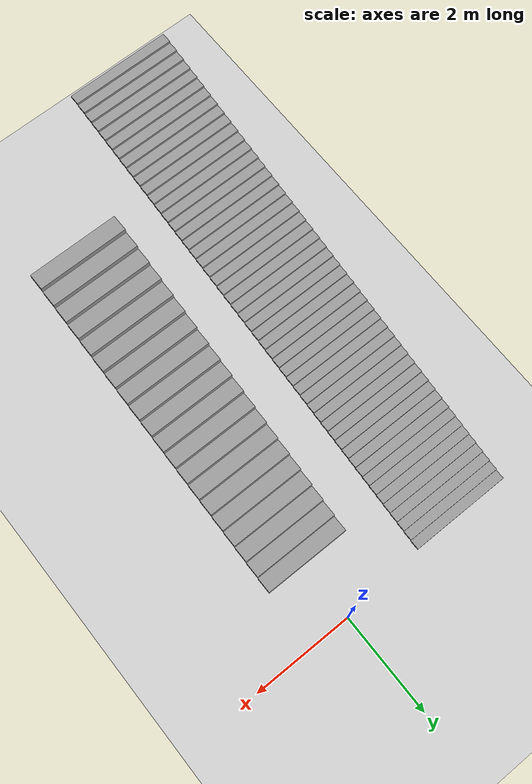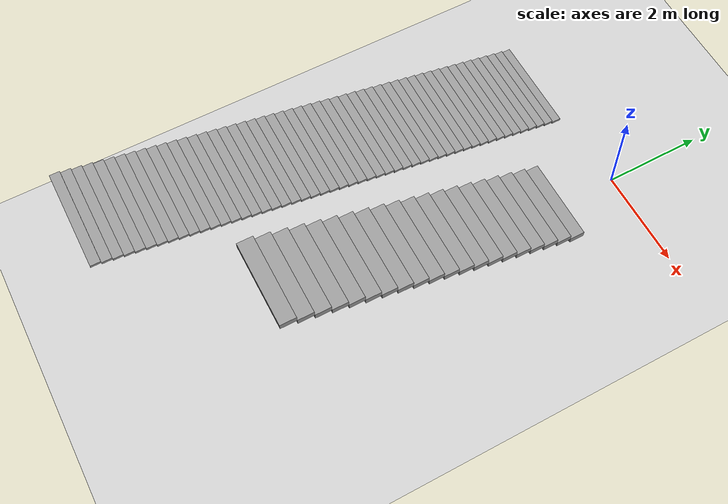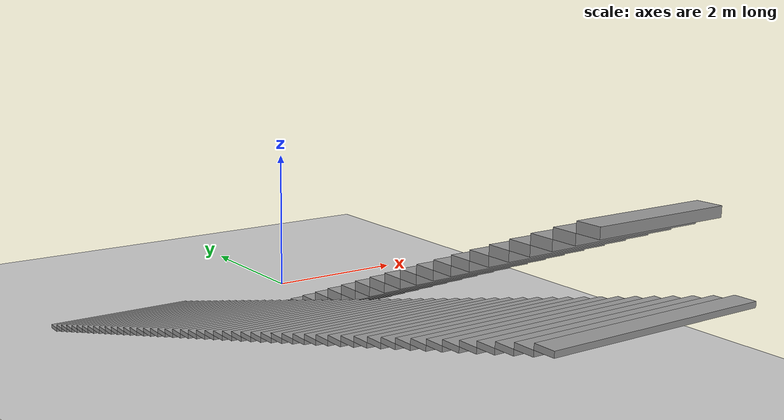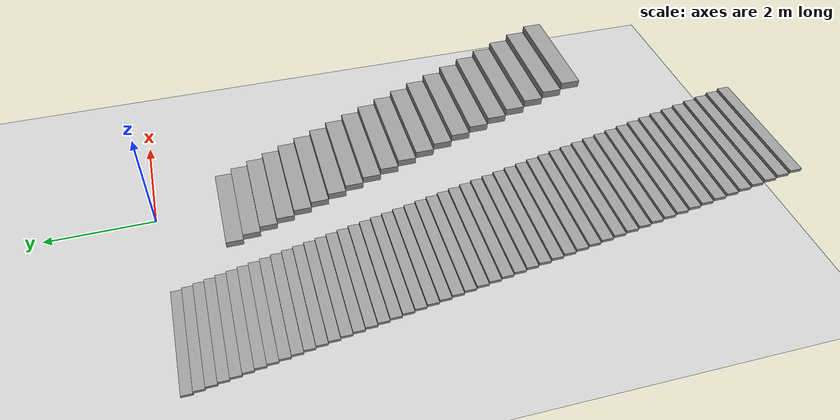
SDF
<sdf version="1.6">
 <world name="default">
  <light name="sun" type="directional">
   <pose>0 0 10 0 -0 0</pose>
   <diffuse>0.8 0.8 0.8 1</diffuse>
   <specular>0.2 0.2 0.2 1</specular>
   <attenuation>
    <range>1000</range>
    <constant>0.9</constant>
    <linear>0.01</linear>
    <quadratic>0.001</quadratic>
   </attenuation>
   <direction>-0.5 0.1 -0.9</direction>
  </light>
  <model name="ground_plane">
   <static>1</static>
   <link name="link">
    <collision name="collision">
     <geometry><plane><normal>0 0 1</normal><size>100 100</size></plane></geometry>
     <surface><friction><ode><mu>100</mu><mu2>50</mu2></ode></friction></surface>
    </collision>
    <visual name="visual">
     <cast_shadows>0</cast_shadows>
     <geometry><plane><normal>0 0 1</normal><size>100 100</size></plane></geometry>
     <material>
      <script><uri>file://media/materials/scripts/gazebo.material</uri><name>Gazebo/Grey</name></script>
     </material>
    </visual>
   </link>
  </model>
  <gravity>0 0 -9.8</gravity>
  <magnetic_field>6e-06 2.3e-05 -4.2e-05</magnetic_field>
  <atmosphere type="adiabatic"/>
  <physics name="default_physics" default="0" type="ode">
   <max_step_size>0.001</max_step_size>
   <real_time_factor>1</real_time_factor>
   <real_time_update_rate>1000</real_time_update_rate>
  </physics>
  <scene><ambient>0.4 0.4 0.4 1</ambient><background>0.7 0.7 0.7 1</background><shadows>1</shadows></scene>
  <audio><device>default</device></audio>
  <spherical_coordinates>
   <surface_model>EARTH_WGS84</surface_model>
   <latitude_deg>0</latitude_deg>
   <longitude_deg>0</longitude_deg>
   <elevation>0</elevation>
   <heading_deg>0</heading_deg>
  </spherical_coordinates>
  <model name="stair_short">
   <pose>-2.72 -4.97 0 0 -0 0</pose>
   <link name="Stairs_1">
    <visual name="Stairs_1_Visual_0">
     <pose>0 4.7383 0.025 0 -0 0</pose>
     <geometry><box><size>2.02 0.1934 0.05</size></box></geometry>
     <material>
      <script><uri>file://media/materials/scripts/gazebo.material</uri><name>Gazebo/Grey</name></script>
      <ambient>1 1 1 1</ambient>
     </material>
     <meta><layer>0</layer></meta>
    </visual>
    <collision name="Stairs_1_Collision_0">
     <geometry><box><size>2.02 0.1934 0.05</size></box></geometry>
     <pose>0 4.7383 0.025 0 -0 0</pose>
    </collision>
    <visual name="Stairs_1_Visual_1">
     <pose>0 4.5449 0.075 0 -0 0</pose>
     <geometry><box><size>2.02 0.1934 0.05</size></box></geometry>
     <material>
      <script><uri>file://media/materials/scripts/gazebo.material</uri><name>Gazebo/Grey</name></script>
      <ambient>1 1 1 1</ambient>
     </material>
     <meta><layer>0</layer></meta>
    </visual>
    <collision name="Stairs_1_Collision_1">
     <geometry><box><size>2.02 0.1934 0.05</size></box></geometry>
     <pose>0 4.5449 0.075 0 -0 0</pose>
    </collision>
    <visual name="Stairs_1_Visual_2">
     <pose>0 4.3515 0.125 0 -0 0</pose>
     <geometry><box><size>2.02 0.1934 0.05</size></box></geometry>
     <material>
      <script><uri>file://media/materials/scripts/gazebo.material</uri><name>Gazebo/Grey</name></script>
      <ambient>1 1 1 1</ambient>
     </material>
     <meta><layer>0</layer></meta>
    </visual>
    <collision name="Stairs_1_Collision_2">
     <geometry><box><size>2.02 0.1934 0.05</size></box></geometry>
     <pose>0 4.3515 0.125 0 -0 0</pose>
    </collision>
    <visual name="Stairs_1_Visual_3">
     <pose>0 4.1581 0.175 0 -0 0</pose>
     <geometry><box><size>2.02 0.1934 0.05</size></box></geometry>
     <material>
      <script><uri>file://media/materials/scripts/gazebo.material</uri><name>Gazebo/Grey</name></script>
      <ambient>1 1 1 1</ambient>
     </material>
     <meta><layer>0</layer></meta>
    </visual>
    <collision name="Stairs_1_Collision_3">
     <geometry><box><size>2.02 0.1934 0.05</size></box></geometry>
     <pose>0 4.1581 0.175 0 -0 0</pose>
    </collision>
    <visual name="Stairs_1_Visual_4">
     <pose>0 3.9647 0.225 0 -0 0</pose>
     <geometry><box><size>2.02 0.1934 0.05</size></box></geometry>
     <material>
      <script><uri>file://media/materials/scripts/gazebo.material</uri><name>Gazebo/Grey</name></script>
      <ambient>1 1 1 1</ambient>
     </material>
     <meta><layer>0</layer></meta>
    </visual>
    <collision name="Stairs_1_Collision_4">
     <geometry><box><size>2.02 0.1934 0.05</size></box></geometry>
     <pose>0 3.9647 0.225 0 -0 0</pose>
    </collision>
    <visual name="Stairs_1_Visual_5">
     <pose>0 3.7713 0.275 0 -0 0</pose>
     <geometry><box><size>2.02 0.1934 0.05</size></box></geometry>
     <material>
      <script><uri>file://media/materials/scripts/gazebo.material</uri><name>Gazebo/Grey</name></script>
      <ambient>1 1 1 1</ambient>
     </material>
     <meta><layer>0</layer></meta>
    </visual>
    <collision name="Stairs_1_Collision_5">
     <geometry><box><size>2.02 0.1934 0.05</size></box></geometry>
     <pose>0 3.7713 0.275 0 -0 0</pose>
    </collision>
    <visual name="Stairs_1_Visual_6">
     <pose>0 3.5779 0.325 0 -0 0</pose>
     <geometry><box><size>2.02 0.1934 0.05</size></box></geometry>
     <material>
      <script><uri>file://media/materials/scripts/gazebo.material</uri><name>Gazebo/Grey</name></script>
      <ambient>1 1 1 1</ambient>
     </material>
     <meta><layer>0</layer></meta>
    </visual>
    <collision name="Stairs_1_Collision_6">
     <geometry><box><size>2.02 0.1934 0.05</size></box></geometry>
     <pose>0 3.5779 0.325 0 -0 0</pose>
    </collision>
    <visual name="Stairs_1_Visual_7">
     <pose>0 3.3845 0.375 0 -0 0</pose>
     <geometry><box><size>2.02 0.1934 0.05</size></box></geometry>
     <material>
      <script><uri>file://media/materials/scripts/gazebo.material</uri><name>Gazebo/Grey</name></script>
      <ambient>1 1 1 1</ambient>
     </material>
     <meta><layer>0</layer></meta>
    </visual>
    <collision name="Stairs_1_Collision_7">
     <geometry><box><size>2.02 0.1934 0.05</size></box></geometry>
     <pose>0 3.3845 0.375 0 -0 0</pose>
    </collision>
    <visual name="Stairs_1_Visual_8">
     <pose>0 3.1911 0.425 0 -0 0</pose>
     <geometry><box><size>2.02 0.1934 0.05</size></box></geometry>
     <material>
      <script><uri>file://media/materials/scripts/gazebo.material</uri><name>Gazebo/Grey</name></script>
      <ambient>1 1 1 1</ambient>
     </material>
     <meta><layer>0</layer></meta>
    </visual>
    <collision name="Stairs_1_Collision_8">
     <geometry><box><size>2.02 0.1934 0.05</size></box></geometry>
     <pose>0 3.1911 0.425 0 -0 0</pose>
    </collision>
    <visual name="Stairs_1_Visual_9">
     <pose>0 2.9977 0.475 0 -0 0</pose>
     <geometry><box><size>2.02 0.1934 0.05</size></box></geometry>
     <material>
      <script><uri>file://media/materials/scripts/gazebo.material</uri><name>Gazebo/Grey</name></script>
      <ambient>1 1 1 1</ambient>
     </material>
     <meta><layer>0</layer></meta>
    </visual>
    <collision name="Stairs_1_Collision_9">
     <geometry><box><size>2.02 0.1934 0.05</size></box></geometry>
     <pose>0 2.9977 0.475 0 -0 0</pose>
    </collision>
    <visual name="Stairs_1_Visual_10">
     <pose>0 2.8043 0.525 0 -0 0</pose>
     <geometry><box><size>2.02 0.1934 0.05</size></box></geometry>
     <material>
      <script><uri>file://media/materials/scripts/gazebo.material</uri><name>Gazebo/Grey</name></script>
      <ambient>1 1 1 1</ambient>
     </material>
     <meta><layer>0</layer></meta>
    </visual>
    <collision name="Stairs_1_Collision_10">
     <geometry><box><size>2.02 0.1934 0.05</size></box></geometry>
     <pose>0 2.8043 0.525 0 -0 0</pose>
    </collision>
    <visual name="Stairs_1_Visual_11">
     <pose>0 2.6109 0.575 0 -0 0</pose>
     <geometry><box><size>2.02 0.1934 0.05</size></box></geometry>
     <material>
      <script><uri>file://media/materials/scripts/gazebo.material</uri><name>Gazebo/Grey</name></script>
      <ambient>1 1 1 1</ambient>
     </material>
     <meta><layer>0</layer></meta>
    </visual>
    <collision name="Stairs_1_Collision_11">
     <geometry><box><size>2.02 0.1934 0.05</size></box></geometry>
     <pose>0 2.6109 0.575 0 -0 0</pose>
    </collision>
    <visual name="Stairs_1_Visual_12">
     <pose>0 2.4175 0.625 0 -0 0</pose>
     <geometry><box><size>2.02 0.1934 0.05</size></box></geometry>
     <material>
      <script><uri>file://media/materials/scripts/gazebo.material</uri><name>Gazebo/Grey</name></script>
      <ambient>1 1 1 1</ambient>
     </material>
     <meta><layer>0</layer></meta>
    </visual>
    <collision name="Stairs_1_Collision_12">
     <geometry><box><size>2.02 0.1934 0.05</size></box></geometry>
     <pose>0 2.4175 0.625 0 -0 0</pose>
    </collision>
    <visual name="Stairs_1_Visual_13">
     <pose>0 2.2241 0.675 0 -0 0</pose>
     <geometry><box><size>2.02 0.1934 0.05</size></box></geometry>
     <material>
      <script><uri>file://media/materials/scripts/gazebo.material</uri><name>Gazebo/Grey</name></script>
      <ambient>1 1 1 1</ambient>
     </material>
     <meta><layer>0</layer></meta>
    </visual>
    <collision name="Stairs_1_Collision_13">
     <geometry><box><size>2.02 0.1934 0.05</size></box></geometry>
     <pose>0 2.2241 0.675 0 -0 0</pose>
    </collision>
    <visual name="Stairs_1_Visual_14">
     <pose>0 2.0307 0.725 0 -0 0</pose>
     <geometry><box><size>2.02 0.1934 0.05</size></box></geometry>
     <material>
      <script><uri>file://media/materials/scripts/gazebo.material</uri><name>Gazebo/Grey</name></script>
      <ambient>1 1 1 1</ambient>
     </material>
     <meta><layer>0</layer></meta>
    </visual>
    <collision name="Stairs_1_Collision_14">
     <geometry><box><size>2.02 0.1934 0.05</size></box></geometry>
     <pose>0 2.0307 0.725 0 -0 0</pose>
    </collision>
    <visual name="Stairs_1_Visual_15">
     <pose>0 1.8373 0.775 0 -0 0</pose>
     <geometry><box><size>2.02 0.1934 0.05</size></box></geometry>
     <material>
      <script><uri>file://media/materials/scripts/gazebo.material</uri><name>Gazebo/Grey</name></script>
      <ambient>1 1 1 1</ambient>
     </material>
     <meta><layer>0</layer></meta>
    </visual>
    <collision name="Stairs_1_Collision_15">
     <geometry><box><size>2.02 0.1934 0.05</size></box></geometry>
     <pose>0 1.8373 0.775 0 -0 0</pose>
    </collision>
    <visual name="Stairs_1_Visual_16">
     <pose>0 1.6439 0.825 0 -0 0</pose>
     <geometry><box><size>2.02 0.1934 0.05</size></box></geometry>
     <material>
      <script><uri>file://media/materials/scripts/gazebo.material</uri><name>Gazebo/Grey</name></script>
      <ambient>1 1 1 1</ambient>
     </material>
     <meta><layer>0</layer></meta>
    </visual>
    <collision name="Stairs_1_Collision_16">
     <geometry><box><size>2.02 0.1934 0.05</size></box></geometry>
     <pose>0 1.6439 0.825 0 -0 0</pose>
    </collision>
    <visual name="Stairs_1_Visual_17">
     <pose>0 1.4505 0.875 0 -0 0</pose>
     <geometry><box><size>2.02 0.1934 0.05</size></box></geometry>
     <material>
      <script><uri>file://media/materials/scripts/gazebo.material</uri><name>Gazebo/Grey</name></script>
      <ambient>1 1 1 1</ambient>
     </material>
     <meta><layer>0</layer></meta>
    </visual>
    <collision name="Stairs_1_Collision_17">
     <geometry><box><size>2.02 0.1934 0.05</size></box></geometry>
     <pose>0 1.4505 0.875 0 -0 0</pose>
    </collision>
    <visual name="Stairs_1_Visual_18">
     <pose>0 1.2571 0.925 0 -0 0</pose>
     <geometry><box><size>2.02 0.1934 0.05</size></box></geometry>
     <material>
      <script><uri>file://media/materials/scripts/gazebo.material</uri><name>Gazebo/Grey</name></script>
      <ambient>1 1 1 1</ambient>
     </material>
     <meta><layer>0</layer></meta>
    </visual>
    <collision name="Stairs_1_Collision_18">
     <geometry><box><size>2.02 0.1934 0.05</size></box></geometry>
     <pose>0 1.2571 0.925 0 -0 0</pose>
    </collision>
    <visual name="Stairs_1_Visual_19">
     <pose>0 1.0637 0.975 0 -0 0</pose>
     <geometry><box><size>2.02 0.1934 0.05</size></box></geometry>
     <material>
      <script><uri>file://media/materials/scripts/gazebo.material</uri><name>Gazebo/Grey</name></script>
      <ambient>1 1 1 1</ambient>
     </material>
     <meta><layer>0</layer></meta>
    </visual>
    <collision name="Stairs_1_Collision_19">
     <geometry><box><size>2.02 0.1934 0.05</size></box></geometry>
     <pose>0 1.0637 0.975 0 -0 0</pose>
    </collision>
    <visual name="Stairs_1_Visual_20">
     <pose>0 0.870299 1.025 0 -0 0</pose>
     <geometry><box><size>2.02 0.1934 0.05</size></box></geometry>
     <material>
      <script><uri>file://media/materials/scripts/gazebo.material</uri><name>Gazebo/Grey</name></script>
      <ambient>1 1 1 1</ambient>
     </material>
     <meta><layer>0</layer></meta>
    </visual>
    <collision name="Stairs_1_Collision_20">
     <geometry><box><size>2.02 0.1934 0.05</size></box></geometry>
     <pose>0 0.870299 1.025 0 -0 0</pose>
    </collision>
    <visual name="Stairs_1_Visual_21">
     <pose>0 0.6769 1.075 0 -0 0</pose>
     <geometry><box><size>2.02 0.1934 0.05</size></box></geometry>
     <material>
      <script><uri>file://media/materials/scripts/gazebo.material</uri><name>Gazebo/Grey</name></script>
      <ambient>1 1 1 1</ambient>
     </material>
     <meta><layer>0</layer></meta>
    </visual>
    <collision name="Stairs_1_Collision_21">
     <geometry><box><size>2.02 0.1934 0.05</size></box></geometry>
     <pose>0 0.6769 1.075 0 -0 0</pose>
    </collision>
    <visual name="Stairs_1_Visual_22">
     <pose>0 0.4835 1.125 0 -0 0</pose>
     <geometry><box><size>2.02 0.1934 0.05</size></box></geometry>
     <material>
      <script><uri>file://media/materials/scripts/gazebo.material</uri><name>Gazebo/Grey</name></script>
      <ambient>1 1 1 1</ambient>
     </material>
     <meta><layer>0</layer></meta>
    </visual>
    <collision name="Stairs_1_Collision_22">
     <geometry><box><size>2.02 0.1934 0.05</size></box></geometry>
     <pose>0 0.4835 1.125 0 -0 0</pose>
    </collision>
    <visual name="Stairs_1_Visual_23">
     <pose>0 0.2901 1.175 0 -0 0</pose>
     <geometry><box><size>2.02 0.1934 0.05</size></box></geometry>
     <material>
      <script><uri>file://media/materials/scripts/gazebo.material</uri><name>Gazebo/Grey</name></script>
      <ambient>1 1 1 1</ambient>
     </material>
     <meta><layer>0</layer></meta>
    </visual>
    <collision name="Stairs_1_Collision_23">
     <geometry><box><size>2.02 0.1934 0.05</size></box></geometry>
     <pose>0 0.2901 1.175 0 -0 0</pose>
    </collision>
    <visual name="Stairs_1_Visual_24">
     <pose>0 0.0967 1.225 0 -0 0</pose>
     <geometry><box><size>2.02 0.1934 0.05</size></box></geometry>
     <material>
      <script><uri>file://media/materials/scripts/gazebo.material</uri><name>Gazebo/Grey</name></script>
      <ambient>1 1 1 1</ambient>
     </material>
     <meta><layer>0</layer></meta>
    </visual>
    <collision name="Stairs_1_Collision_24">
     <geometry><box><size>2.02 0.1934 0.05</size></box></geometry>
     <pose>0 0.0967 1.225 0 -0 0</pose>
    </collision>
    <visual name="Stairs_1_Visual_25">
     <pose>0 -0.096701 1.275 0 -0 0</pose>
     <geometry><box><size>2.02 0.1934 0.05</size></box></geometry>
     <material>
      <script><uri>file://media/materials/scripts/gazebo.material</uri><name>Gazebo/Grey</name></script>
      <ambient>1 1 1 1</ambient>
     </material>
     <meta><layer>0</layer></meta>
    </visual>
    <collision name="Stairs_1_Collision_25">
     <geometry><box><size>2.02 0.1934 0.05</size></box></geometry>
     <pose>0 -0.096701 1.275 0 -0 0</pose>
    </collision>
    <visual name="Stairs_1_Visual_26">
     <pose>0 -0.2901 1.325 0 -0 0</pose>
     <geometry><box><size>2.02 0.1934 0.05</size></box></geometry>
     <material>
      <script><uri>file://media/materials/scripts/gazebo.material</uri><name>Gazebo/Grey</name></script>
      <ambient>1 1 1 1</ambient>
     </material>
     <meta><layer>0</layer></meta>
    </visual>
    <collision name="Stairs_1_Collision_26">
     <geometry><box><size>2.02 0.1934 0.05</size></box></geometry>
     <pose>0 -0.2901 1.325 0 -0 0</pose>
    </collision>
    <visual name="Stairs_1_Visual_27">
     <pose>0 -0.4835 1.375 0 -0 0</pose>
     <geometry><box><size>2.02 0.1934 0.05</size></box></geometry>
     <material>
      <script><uri>file://media/materials/scripts/gazebo.material</uri><name>Gazebo/Grey</name></script>
      <ambient>1 1 1 1</ambient>
     </material>
     <meta><layer>0</layer></meta>
    </visual>
    <collision name="Stairs_1_Collision_27">
     <geometry><box><size>2.02 0.1934 0.05</size></box></geometry>
     <pose>0 -0.4835 1.375 0 -0 0</pose>
    </collision>
    <visual name="Stairs_1_Visual_28">
     <pose>0 -0.6769 1.425 0 -0 0</pose>
     <geometry><box><size>2.02 0.1934 0.05</size></box></geometry>
     <material>
      <script><uri>file://media/materials/scripts/gazebo.material</uri><name>Gazebo/Grey</name></script>
      <ambient>1 1 1 1</ambient>
     </material>
     <meta><layer>0</layer></meta>
    </visual>
    <collision name="Stairs_1_Collision_28">
     <geometry><box><size>2.02 0.1934 0.05</size></box></geometry>
     <pose>0 -0.6769 1.425 0 -0 0</pose>
    </collision>
    <visual name="Stairs_1_Visual_29">
     <pose>0 -0.8703 1.475 0 -0 0</pose>
     <geometry><box><size>2.02 0.1934 0.05</size></box></geometry>
     <material>
      <script><uri>file://media/materials/scripts/gazebo.material</uri><name>Gazebo/Grey</name></script>
      <ambient>1 1 1 1</ambient>
     </material>
     <meta><layer>0</layer></meta>
    </visual>
    <collision name="Stairs_1_Collision_29">
     <geometry><box><size>2.02 0.1934 0.05</size></box></geometry>
     <pose>0 -0.8703 1.475 0 -0 0</pose>
    </collision>
    <visual name="Stairs_1_Visual_30">
     <pose>0 -1.0637 1.525 0 -0 0</pose>
     <geometry><box><size>2.02 0.1934 0.05</size></box></geometry>
     <material>
      <script><uri>file://media/materials/scripts/gazebo.material</uri><name>Gazebo/Grey</name></script>
      <ambient>1 1 1 1</ambient>
     </material>
     <meta><layer>0</layer></meta>
    </visual>
    <collision name="Stairs_1_Collision_30">
     <geometry><box><size>2.02 0.1934 0.05</size></box></geometry>
     <pose>0 -1.0637 1.525 0 -0 0</pose>
    </collision>
    <visual name="Stairs_1_Visual_31">
     <pose>0 -1.2571 1.575 0 -0 0</pose>
     <geometry><box><size>2.02 0.1934 0.05</size></box></geometry>
     <material>
      <script><uri>file://media/materials/scripts/gazebo.material</uri><name>Gazebo/Grey</name></script>
      <ambient>1 1 1 1</ambient>
     </material>
     <meta><layer>0</layer></meta>
    </visual>
    <collision name="Stairs_1_Collision_31">
     <geometry><box><size>2.02 0.1934 0.05</size></box></geometry>
     <pose>0 -1.2571 1.575 0 -0 0</pose>
    </collision>
    <visual name="Stairs_1_Visual_32">
     <pose>0 -1.4505 1.625 0 -0 0</pose>
     <geometry><box><size>2.02 0.1934 0.05</size></box></geometry>
     <material>
      <script><uri>file://media/materials/scripts/gazebo.material</uri><name>Gazebo/Grey</name></script>
      <ambient>1 1 1 1</ambient>
     </material>
     <meta><layer>0</layer></meta>
    </visual>
    <collision name="Stairs_1_Collision_32">
     <geometry><box><size>2.02 0.1934 0.05</size></box></geometry>
     <pose>0 -1.4505 1.625 0 -0 0</pose>
    </collision>
    <visual name="Stairs_1_Visual_33">
     <pose>0 -1.6439 1.675 0 -0 0</pose>
     <geometry><box><size>2.02 0.1934 0.05</size></box></geometry>
     <material>
      <script><uri>file://media/materials/scripts/gazebo.material</uri><name>Gazebo/Grey</name></script>
      <ambient>1 1 1 1</ambient>
     </material>
     <meta><layer>0</layer></meta>
    </visual>
    <collision name="Stairs_1_Collision_33">
     <geometry><box><size>2.02 0.1934 0.05</size></box></geometry>
     <pose>0 -1.6439 1.675 0 -0 0</pose>
    </collision>
    <visual name="Stairs_1_Visual_34">
     <pose>0 -1.8373 1.725 0 -0 0</pose>
     <geometry><box><size>2.02 0.1934 0.05</size></box></geometry>
     <material>
      <script><uri>file://media/materials/scripts/gazebo.material</uri><name>Gazebo/Grey</name></script>
      <ambient>1 1 1 1</ambient>
     </material>
     <meta><layer>0</layer></meta>
    </visual>
    <collision name="Stairs_1_Collision_34">
     <geometry><box><size>2.02 0.1934 0.05</size></box></geometry>
     <pose>0 -1.8373 1.725 0 -0 0</pose>
    </collision>
    <visual name="Stairs_1_Visual_35">
     <pose>0 -2.0307 1.775 0 -0 0</pose>
     <geometry><box><size>2.02 0.1934 0.05</size></box></geometry>
     <material>
      <script><uri>file://media/materials/scripts/gazebo.material</uri><name>Gazebo/Grey</name></script>
      <ambient>1 1 1 1</ambient>
     </material>
     <meta><layer>0</layer></meta>
    </visual>
    <collision name="Stairs_1_Collision_35">
     <geometry><box><size>2.02 0.1934 0.05</size></box></geometry>
     <pose>0 -2.0307 1.775 0 -0 0</pose>
    </collision>
    <visual name="Stairs_1_Visual_36">
     <pose>0 -2.2241 1.825 0 -0 0</pose>
     <geometry><box><size>2.02 0.1934 0.05</size></box></geometry>
     <material>
      <script><uri>file://media/materials/scripts/gazebo.material</uri><name>Gazebo/Grey</name></script>
      <ambient>1 1 1 1</ambient>
     </material>
     <meta><layer>0</layer></meta>
    </visual>
    <collision name="Stairs_1_Collision_36">
     <geometry><box><size>2.02 0.1934 0.05</size></box></geometry>
     <pose>0 -2.2241 1.825 0 -0 0</pose>
    </collision>
    <visual name="Stairs_1_Visual_37">
     <pose>0 -2.4175 1.875 0 -0 0</pose>
     <geometry><box><size>2.02 0.1934 0.05</size></box></geometry>
     <material>
      <script><uri>file://media/materials/scripts/gazebo.material</uri><name>Gazebo/Grey</name></script>
      <ambient>1 1 1 1</ambient>
     </material>
     <meta><layer>0</layer></meta>
    </visual>
    <collision name="Stairs_1_Collision_37">
     <geometry><box><size>2.02 0.1934 0.05</size></box></geometry>
     <pose>0 -2.4175 1.875 0 -0 0</pose>
    </collision>
    <visual name="Stairs_1_Visual_38">
     <pose>0 -2.6109 1.925 0 -0 0</pose>
     <geometry><box><size>2.02 0.1934 0.05</size></box></geometry>
     <material>
      <script><uri>file://media/materials/scripts/gazebo.material</uri><name>Gazebo/Grey</name></script>
      <ambient>1 1 1 1</ambient>
     </material>
     <meta><layer>0</layer></meta>
    </visual>
    <collision name="Stairs_1_Collision_38">
     <geometry><box><size>2.02 0.1934 0.05</size></box></geometry>
     <pose>0 -2.6109 1.925 0 -0 0</pose>
    </collision>
    <visual name="Stairs_1_Visual_39">
     <pose>0 -2.8043 1.975 0 -0 0</pose>
     <geometry><box><size>2.02 0.1934 0.05</size></box></geometry>
     <material>
      <script><uri>file://media/materials/scripts/gazebo.material</uri><name>Gazebo/Grey</name></script>
      <ambient>1 1 1 1</ambient>
     </material>
     <meta><layer>0</layer></meta>
    </visual>
    <collision name="Stairs_1_Collision_39">
     <geometry><box><size>2.02 0.1934 0.05</size></box></geometry>
     <pose>0 -2.8043 1.975 0 -0 0</pose>
    </collision>
    <visual name="Stairs_1_Visual_40">
     <pose>0 -2.9977 2.025 0 -0 0</pose>
     <geometry><box><size>2.02 0.1934 0.05</size></box></geometry>
     <material>
      <script><uri>file://media/materials/scripts/gazebo.material</uri><name>Gazebo/Grey</name></script>
      <ambient>1 1 1 1</ambient>
     </material>
     <meta><layer>0</layer></meta>
    </visual>
    <collision name="Stairs_1_Collision_40">
     <geometry><box><size>2.02 0.1934 0.05</size></box></geometry>
     <pose>0 -2.9977 2.025 0 -0 0</pose>
    </collision>
    <visual name="Stairs_1_Visual_41">
     <pose>0 -3.1911 2.075 0 -0 0</pose>
     <geometry><box><size>2.02 0.1934 0.05</size></box></geometry>
     <material>
      <script><uri>file://media/materials/scripts/gazebo.material</uri><name>Gazebo/Grey</name></script>
      <ambient>1 1 1 1</ambient>
     </material>
     <meta><layer>0</layer></meta>
    </visual>
    <collision name="Stairs_1_Collision_41">
     <geometry><box><size>2.02 0.1934 0.05</size></box></geometry>
     <pose>0 -3.1911 2.075 0 -0 0</pose>
    </collision>
    <visual name="Stairs_1_Visual_42">
     <pose>0 -3.3845 2.125 0 -0 0</pose>
     <geometry><box><size>2.02 0.1934 0.05</size></box></geometry>
     <material>
      <script><uri>file://media/materials/scripts/gazebo.material</uri><name>Gazebo/Grey</name></script>
      <ambient>1 1 1 1</ambient>
     </material>
     <meta><layer>0</layer></meta>
    </visual>
    <collision name="Stairs_1_Collision_42">
     <geometry><box><size>2.02 0.1934 0.05</size></box></geometry>
     <pose>0 -3.3845 2.125 0 -0 0</pose>
    </collision>
    <visual name="Stairs_1_Visual_43">
     <pose>0 -3.5779 2.175 0 -0 0</pose>
     <geometry><box><size>2.02 0.1934 0.05</size></box></geometry>
     <material>
      <script><uri>file://media/materials/scripts/gazebo.material</uri><name>Gazebo/Grey</name></script>
      <ambient>1 1 1 1</ambient>
     </material>
     <meta><layer>0</layer></meta>
    </visual>
    <collision name="Stairs_1_Collision_43">
     <geometry><box><size>2.02 0.1934 0.05</size></box></geometry>
     <pose>0 -3.5779 2.175 0 -0 0</pose>
    </collision>
    <visual name="Stairs_1_Visual_44">
     <pose>0 -3.7713 2.225 0 -0 0</pose>
     <geometry><box><size>2.02 0.1934 0.05</size></box></geometry>
     <material>
      <script><uri>file://media/materials/scripts/gazebo.material</uri><name>Gazebo/Grey</name></script>
      <ambient>1 1 1 1</ambient>
     </material>
     <meta><layer>0</layer></meta>
    </visual>
    <collision name="Stairs_1_Collision_44">
     <geometry><box><size>2.02 0.1934 0.05</size></box></geometry>
     <pose>0 -3.7713 2.225 0 -0 0</pose>
    </collision>
    <visual name="Stairs_1_Visual_45">
     <pose>0 -3.9647 2.275 0 -0 0</pose>
     <geometry><box><size>2.02 0.1934 0.05</size></box></geometry>
     <material>
      <script><uri>file://media/materials/scripts/gazebo.material</uri><name>Gazebo/Grey</name></script>
      <ambient>1 1 1 1</ambient>
     </material>
     <meta><layer>0</layer></meta>
    </visual>
    <collision name="Stairs_1_Collision_45">
     <geometry><box><size>2.02 0.1934 0.05</size></box></geometry>
     <pose>0 -3.9647 2.275 0 -0 0</pose>
    </collision>
    <visual name="Stairs_1_Visual_46">
     <pose>0 -4.1581 2.325 0 -0 0</pose>
     <geometry><box><size>2.02 0.1934 0.05</size></box></geometry>
     <material>
      <script><uri>file://media/materials/scripts/gazebo.material</uri><name>Gazebo/Grey</name></script>
      <ambient>1 1 1 1</ambient>
     </material>
     <meta><layer>0</layer></meta>
    </visual>
    <collision name="Stairs_1_Collision_46">
     <geometry><box><size>2.02 0.1934 0.05</size></box></geometry>
     <pose>0 -4.1581 2.325 0 -0 0</pose>
    </collision>
    <visual name="Stairs_1_Visual_47">
     <pose>0 -4.3515 2.375 0 -0 0</pose>
     <geometry><box><size>2.02 0.1934 0.05</size></box></geometry>
     <material>
      <script><uri>file://media/materials/scripts/gazebo.material</uri><name>Gazebo/Grey</name></script>
      <ambient>1 1 1 1</ambient>
     </material>
     <meta><layer>0</layer></meta>
    </visual>
    <collision name="Stairs_1_Collision_47">
     <geometry><box><size>2.02 0.1934 0.05</size></box></geometry>
     <pose>0 -4.3515 2.375 0 -0 0</pose>
    </collision>
    <visual name="Stairs_1_Visual_48">
     <pose>0 -4.5449 2.425 0 -0 0</pose>
     <geometry><box><size>2.02 0.1934 0.05</size></box></geometry>
     <material>
      <script><uri>file://media/materials/scripts/gazebo.material</uri><name>Gazebo/Grey</name></script>
      <ambient>1 1 1 1</ambient>
     </material>
     <meta><layer>0</layer></meta>
    </visual>
    <collision name="Stairs_1_Collision_48">
     <geometry><box><size>2.02 0.1934 0.05</size></box></geometry>
     <pose>0 -4.5449 2.425 0 -0 0</pose>
    </collision>
    <visual name="Stairs_1_Visual_49">
     <pose>0 -4.7383 2.475 0 -0 0</pose>
     <geometry><box><size>2.02 0.1934 0.05</size></box></geometry>
     <material>
      <script><uri>file://media/materials/scripts/gazebo.material</uri><name>Gazebo/Grey</name></script>
      <ambient>1 1 1 1</ambient>
     </material>
     <meta><layer>0</layer></meta>
    </visual>
    <collision name="Stairs_1_Collision_49">
     <geometry><box><size>2.02 0.1934 0.05</size></box></geometry>
     <pose>0 -4.7383 2.475 0 -0 0</pose>
    </collision>
   </link>
   <static>1</static>
  </model>
  <model name="stair2">
   <pose>-0.07 -4.32 0 0 -0 0</pose>
   <link name="Stairs_1">
    <visual name="Stairs_1_Visual_0">
     <pose>-0 2.98775 0.0625 0 -0 0</pose>
     <geometry><box><size>1.72 0.3145 0.125</size></box></geometry>
     <material>
      <script><uri>file://media/materials/scripts/gazebo.material</uri><name>Gazebo/Grey</name></script>
      <ambient>1 1 1 1</ambient>
     </material>
     <meta><layer>0</layer></meta>
    </visual>
    <collision name="Stairs_1_Collision_0">
     <geometry><box><size>1.72 0.3145 0.125</size></box></geometry>
     <pose>-0 2.98775 0.0625 0 -0 0</pose>
    </collision>
    <visual name="Stairs_1_Visual_1">
     <pose>-0 2.67325 0.1875 0 -0 0</pose>
     <geometry><box><size>1.72 0.3145 0.125</size></box></geometry>
     <material>
      <script><uri>file://media/materials/scripts/gazebo.material</uri><name>Gazebo/Grey</name></script>
      <ambient>1 1 1 1</ambient>
     </material>
     <meta><layer>0</layer></meta>
    </visual>
    <collision name="Stairs_1_Collision_1">
     <geometry><box><size>1.72 0.3145 0.125</size></box></geometry>
     <pose>-0 2.67325 0.1875 0 -0 0</pose>
    </collision>
    <visual name="Stairs_1_Visual_2">
     <pose>-0 2.35875 0.3125 0 -0 0</pose>
     <geometry><box><size>1.72 0.3145 0.125</size></box></geometry>
     <material>
      <script><uri>file://media/materials/scripts/gazebo.material</uri><name>Gazebo/Grey</name></script>
      <ambient>1 1 1 1</ambient>
     </material>
     <meta><layer>0</layer></meta>
    </visual>
    <collision name="Stairs_1_Collision_2">
     <geometry><box><size>1.72 0.3145 0.125</size></box></geometry>
     <pose>-0 2.35875 0.3125 0 -0 0</pose>
    </collision>
    <visual name="Stairs_1_Visual_3">
     <pose>-0 2.04425 0.4375 0 -0 0</pose>
     <geometry><box><size>1.72 0.3145 0.125</size></box></geometry>
     <material>
      <script><uri>file://media/materials/scripts/gazebo.material</uri><name>Gazebo/Grey</name></script>
      <ambient>1 1 1 1</ambient>
     </material>
     <meta><layer>0</layer></meta>
    </visual>
    <collision name="Stairs_1_Collision_3">
     <geometry><box><size>1.72 0.3145 0.125</size></box></geometry>
     <pose>-0 2.04425 0.4375 0 -0 0</pose>
    </collision>
    <visual name="Stairs_1_Visual_4">
     <pose>-0 1.72975 0.5625 0 -0 0</pose>
     <geometry><box><size>1.72 0.3145 0.125</size></box></geometry>
     <material>
      <script><uri>file://media/materials/scripts/gazebo.material</uri><name>Gazebo/Grey</name></script>
      <ambient>1 1 1 1</ambient>
     </material>
     <meta><layer>0</layer></meta>
    </visual>
    <collision name="Stairs_1_Collision_4">
     <geometry><box><size>1.72 0.3145 0.125</size></box></geometry>
     <pose>-0 1.72975 0.5625 0 -0 0</pose>
    </collision>
    <visual name="Stairs_1_Visual_5">
     <pose>-0 1.41525 0.6875 0 -0 0</pose>
     <geometry><box><size>1.72 0.3145 0.125</size></box></geometry>
     <material>
      <script><uri>file://media/materials/scripts/gazebo.material</uri><name>Gazebo/Grey</name></script>
      <ambient>1 1 1 1</ambient>
     </material>
     <meta><layer>0</layer></meta>
    </visual>
    <collision name="Stairs_1_Collision_5">
     <geometry><box><size>1.72 0.3145 0.125</size></box></geometry>
     <pose>-0 1.41525 0.6875 0 -0 0</pose>
    </collision>
    <visual name="Stairs_1_Visual_6">
     <pose>-0 1.10075 0.8125 0 -0 0</pose>
     <geometry><box><size>1.72 0.3145 0.125</size></box></geometry>
     <material>
      <script><uri>file://media/materials/scripts/gazebo.material</uri><name>Gazebo/Grey</name></script>
      <ambient>1 1 1 1</ambient>
     </material>
     <meta><layer>0</layer></meta>
    </visual>
    <collision name="Stairs_1_Collision_6">
     <geometry><box><size>1.72 0.3145 0.125</size></box></geometry>
     <pose>-0 1.10075 0.8125 0 -0 0</pose>
    </collision>
    <visual name="Stairs_1_Visual_7">
     <pose>-0 0.78625 0.9375 0 -0 0</pose>
     <geometry><box><size>1.72 0.3145 0.125</size></box></geometry>
     <material>
      <script><uri>file://media/materials/scripts/gazebo.material</uri><name>Gazebo/Grey</name></script>
      <ambient>1 1 1 1</ambient>
     </material>
     <meta><layer>0</layer></meta>
    </visual>
    <collision name="Stairs_1_Collision_7">
     <geometry><box><size>1.72 0.3145 0.125</size></box></geometry>
     <pose>-0 0.78625 0.9375 0 -0 0</pose>
    </collision>
    <visual name="Stairs_1_Visual_8">
     <pose>-0 0.47175 1.0625 0 -0 0</pose>
     <geometry><box><size>1.72 0.3145 0.125</size></box></geometry>
     <material>
      <script><uri>file://media/materials/scripts/gazebo.material</uri><name>Gazebo/Grey</name></script>
      <ambient>1 1 1 1</ambient>
     </material>
     <meta><layer>0</layer></meta>
    </visual>
    <collision name="Stairs_1_Collision_8">
     <geometry><box><size>1.72 0.3145 0.125</size></box></geometry>
     <pose>-0 0.47175 1.0625 0 -0 0</pose>
    </collision>
    <visual name="Stairs_1_Visual_9">
     <pose>-0 0.15725 1.1875 0 -0 0</pose>
     <geometry><box><size>1.72 0.3145 0.125</size></box></geometry>
     <material>
      <script><uri>file://media/materials/scripts/gazebo.material</uri><name>Gazebo/Grey</name></script>
      <ambient>1 1 1 1</ambient>
     </material>
     <meta><layer>0</layer></meta>
    </visual>
    <collision name="Stairs_1_Collision_9">
     <geometry><box><size>1.72 0.3145 0.125</size></box></geometry>
     <pose>-0 0.15725 1.1875 0 -0 0</pose>
    </collision>
    <visual name="Stairs_1_Visual_10">
     <pose>-0 -0.15725 1.3125 0 -0 0</pose>
     <geometry><box><size>1.72 0.3145 0.125</size></box></geometry>
     <material>
      <script><uri>file://media/materials/scripts/gazebo.material</uri><name>Gazebo/Grey</name></script>
      <ambient>1 1 1 1</ambient>
     </material>
     <meta><layer>0</layer></meta>
    </visual>
    <collision name="Stairs_1_Collision_10">
     <geometry><box><size>1.72 0.3145 0.125</size></box></geometry>
     <pose>-0 -0.15725 1.3125 0 -0 0</pose>
    </collision>
    <visual name="Stairs_1_Visual_11">
     <pose>-0 -0.47175 1.4375 0 -0 0</pose>
     <geometry><box><size>1.72 0.3145 0.125</size></box></geometry>
     <material>
      <script><uri>file://media/materials/scripts/gazebo.material</uri><name>Gazebo/Grey</name></script>
      <ambient>1 1 1 1</ambient>
     </material>
     <meta><layer>0</layer></meta>
    </visual>
    <collision name="Stairs_1_Collision_11">
     <geometry><box><size>1.72 0.3145 0.125</size></box></geometry>
     <pose>-0 -0.47175 1.4375 0 -0 0</pose>
    </collision>
    <visual name="Stairs_1_Visual_12">
     <pose>-0 -0.78625 1.5625 0 -0 0</pose>
     <geometry><box><size>1.72 0.3145 0.125</size></box></geometry>
     <material>
      <script><uri>file://media/materials/scripts/gazebo.material</uri><name>Gazebo/Grey</name></script>
      <ambient>1 1 1 1</ambient>
     </material>
     <meta><layer>0</layer></meta>
    </visual>
    <collision name="Stairs_1_Collision_12">
     <geometry><box><size>1.72 0.3145 0.125</size></box></geometry>
     <pose>-0 -0.78625 1.5625 0 -0 0</pose>
    </collision>
    <visual name="Stairs_1_Visual_13">
     <pose>-0 -1.10075 1.6875 0 -0 0</pose>
     <geometry><box><size>1.72 0.3145 0.125</size></box></geometry>
     <material>
      <script><uri>file://media/materials/scripts/gazebo.material</uri><name>Gazebo/Grey</name></script>
      <ambient>1 1 1 1</ambient>
     </material>
     <meta><layer>0</layer></meta>
    </visual>
    <collision name="Stairs_1_Collision_13">
     <geometry><box><size>1.72 0.3145 0.125</size></box></geometry>
     <pose>-0 -1.10075 1.6875 0 -0 0</pose>
    </collision>
    <visual name="Stairs_1_Visual_14">
     <pose>-0 -1.41525 1.8125 0 -0 0</pose>
     <geometry><box><size>1.72 0.3145 0.125</size></box></geometry>
     <material>
      <script><uri>file://media/materials/scripts/gazebo.material</uri><name>Gazebo/Grey</name></script>
      <ambient>1 1 1 1</ambient>
     </material>
     <meta><layer>0</layer></meta>
    </visual>
    <collision name="Stairs_1_Collision_14">
     <geometry><box><size>1.72 0.3145 0.125</size></box></geometry>
     <pose>-0 -1.41525 1.8125 0 -0 0</pose>
    </collision>
    <visual name="Stairs_1_Visual_15">
     <pose>-0 -1.72975 1.9375 0 -0 0</pose>
     <geometry><box><size>1.72 0.3145 0.125</size></box></geometry>
     <material>
      <script><uri>file://media/materials/scripts/gazebo.material</uri><name>Gazebo/Grey</name></script>
      <ambient>1 1 1 1</ambient>
     </material>
     <meta><layer>0</layer></meta>
    </visual>
    <collision name="Stairs_1_Collision_15">
     <geometry><box><size>1.72 0.3145 0.125</size></box></geometry>
     <pose>-0 -1.72975 1.9375 0 -0 0</pose>
    </collision>
    <visual name="Stairs_1_Visual_16">
     <pose>-0 -2.04425 2.0625 0 -0 0</pose>
     <geometry><box><size>1.72 0.3145 0.125</size></box></geometry>
     <material>
      <script><uri>file://media/materials/scripts/gazebo.material</uri><name>Gazebo/Grey</name></script>
      <ambient>1 1 1 1</ambient>
     </material>
     <meta><layer>0</layer></meta>
    </visual>
    <collision name="Stairs_1_Collision_16">
     <geometry><box><size>1.72 0.3145 0.125</size></box></geometry>
     <pose>-0 -2.04425 2.0625 0 -0 0</pose>
    </collision>
    <visual name="Stairs_1_Visual_17">
     <pose>-0 -2.35875 2.1875 0 -0 0</pose>
     <geometry><box><size>1.72 0.3145 0.125</size></box></geometry>
     <material>
      <script><uri>file://media/materials/scripts/gazebo.material</uri><name>Gazebo/Grey</name></script>
      <ambient>1 1 1 1</ambient>
     </material>
     <meta><layer>0</layer></meta>
    </visual>
    <collision name="Stairs_1_Collision_17">
     <geometry><box><size>1.72 0.3145 0.125</size></box></geometry>
     <pose>-0 -2.35875 2.1875 0 -0 0</pose>
    </collision>
    <visual name="Stairs_1_Visual_18">
     <pose>-0 -2.67325 2.3125 0 -0 0</pose>
     <geometry><box><size>1.72 0.3145 0.125</size></box></geometry>
     <material>
      <script><uri>file://media/materials/scripts/gazebo.material</uri><name>Gazebo/Grey</name></script>
      <ambient>1 1 1 1</ambient>
     </material>
     <meta><layer>0</layer></meta>
    </visual>
    <collision name="Stairs_1_Collision_18">
     <geometry><box><size>1.72 0.3145 0.125</size></box></geometry>
     <pose>-0 -2.67325 2.3125 0 -0 0</pose>
    </collision>
    <visual name="Stairs_1_Visual_19">
     <pose>-0 -2.98775 2.4375 0 -0 0</pose>
     <geometry><box><size>1.72 0.3145 0.125</size></box></geometry>
     <material>
      <script><uri>file://media/materials/scripts/gazebo.material</uri><name>Gazebo/Grey</name></script>
      <ambient>1 1 1 1</ambient>
     </material>
     <meta><layer>0</layer></meta>
    </visual>
    <collision name="Stairs_1_Collision_19">
     <geometry><box><size>1.72 0.3145 0.125</size></box></geometry>
     <pose>-0 -2.98775 2.4375 0 -0 0</pose>
    </collision>
   </link>
   <static>1</static>
  </model>
 </world>
</sdf>
